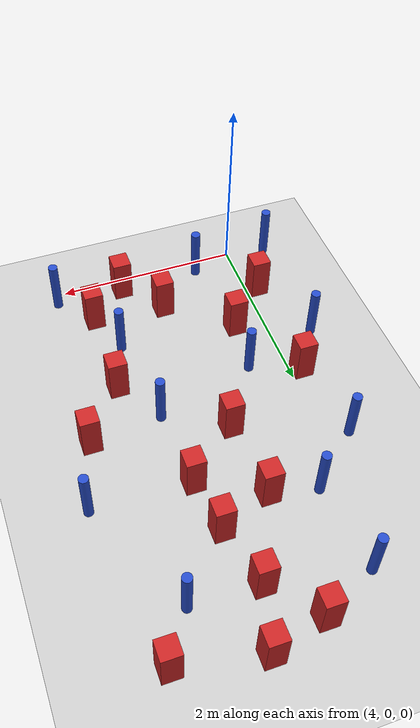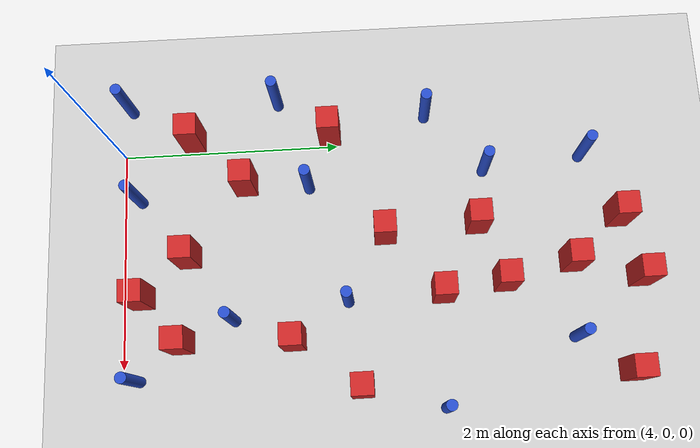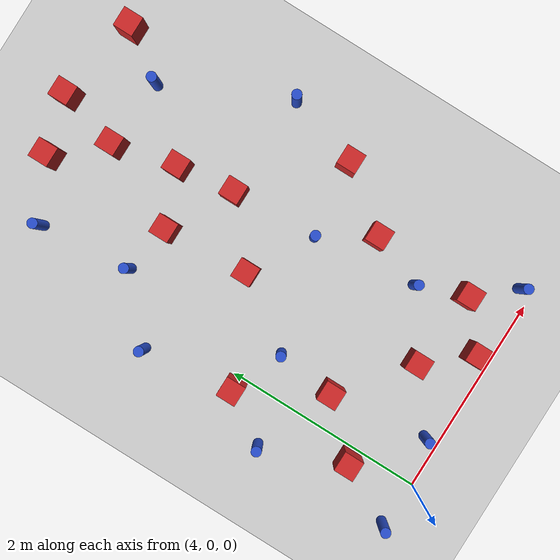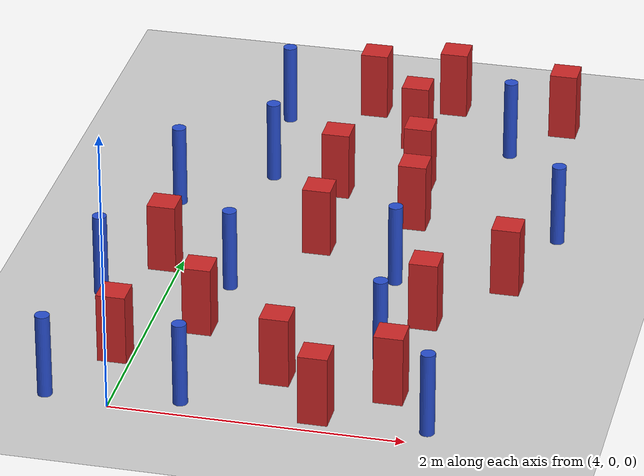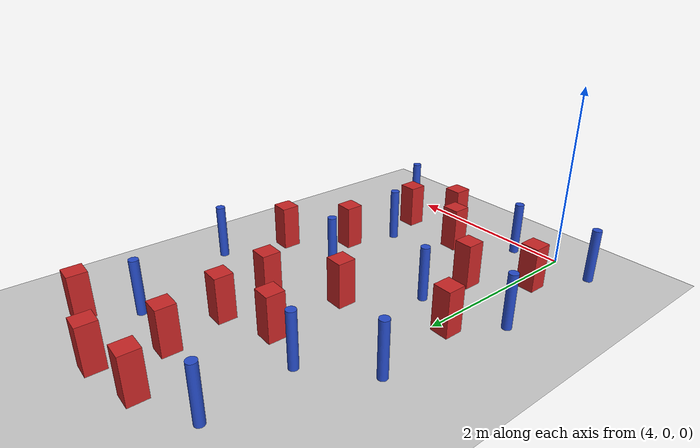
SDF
<sdf version="1.6">
 <world name="default">
  <model name="ground_plane">
   <static>1</static>
   <link name="link">
    <collision name="collision">
     <geometry><plane><normal>0 0 1</normal><size>100 100</size></plane></geometry>
     <surface><friction><ode><mu>100</mu><mu2>50</mu2></ode></friction></surface>
    </collision>
    <visual name="visual">
     <cast_shadows>0</cast_shadows>
     <geometry><plane><normal>0 0 1</normal><size>100 100</size></plane></geometry>
     <material>
      <ambient>1.0 1.0 1.0 1.0</ambient>
      <diffuse>0.8 0.8 0.8 1.0</diffuse>
      <specular>0.01 0.01 0.01 1.000000</specular>
     </material>
    </visual>
   </link>
  </model>
  <model name="square_post_obstacle4">
   <static>true</static>
   <pose>6.26932080476 2.13416776253 -6.11067671241e-07 -5.50515727128e-06 -8.79689657224e-07 2.37013304536e-05</pose>
   <link name="link">
    <pose>0 0 0.25 0 -0 0</pose>
    <inertial>
     <mass>100</mass>
     <inertia>
      <ixx>0.166667</ixx>
      <ixy>0</ixy>
      <ixz>0</ixz>
      <iyy>0.166667</iyy>
      <iyz>0</iyz>
      <izz>0.166667</izz>
     </inertia>
    </inertial>
    <collision name="collision"><geometry><box><size>.2 .2 .5</size></box></geometry></collision>
    <visual name="visual">
     <geometry><box><size>.2 .2 .5</size></box></geometry>
     <material>
      <script><name>Gazebo/Red</name><uri>file://media/materials/scripts/gazebo.material</uri></script>
     </material>
    </visual>
   </link>
  </model>
  <model name="square_post_obstacle12">
   <static>true</static>
   <pose>5.79151659013 0.536573536814 -6.11067671241e-07 -5.50515727128e-06 -8.79689657224e-07 2.37013304536e-05</pose>
   <link name="link">
    <pose>0 0 0.25 0 -0 0</pose>
    <inertial>
     <mass>100</mass>
     <inertia>
      <ixx>0.166667</ixx>
      <ixy>0</ixy>
      <ixz>0</ixz>
      <iyy>0.166667</iyy>
      <iyz>0</iyz>
      <izz>0.166667</izz>
     </inertia>
    </inertial>
    <collision name="collision"><geometry><box><size>.2 .2 .5</size></box></geometry></collision>
    <visual name="visual">
     <geometry><box><size>.2 .2 .5</size></box></geometry>
     <material>
      <script><name>Gazebo/Red</name><uri>file://media/materials/scripts/gazebo.material</uri></script>
     </material>
    </visual>
   </link>
  </model>
  <model name="square_post_obstacle34">
   <static>true</static>
   <pose>4.82586942838 4.55679232127 -6.11067671241e-07 -5.50515727128e-06 -8.79689657224e-07 2.37013304536e-05</pose>
   <link name="link">
    <pose>0 0 0.25 0 -0 0</pose>
    <inertial>
     <mass>100</mass>
     <inertia>
      <ixx>0.166667</ixx>
      <ixy>0</ixy>
      <ixz>0</ixz>
      <iyy>0.166667</iyy>
      <iyz>0</iyz>
      <izz>0.166667</izz>
     </inertia>
    </inertial>
    <collision name="collision"><geometry><box><size>.2 .2 .5</size></box></geometry></collision>
    <visual name="visual">
     <geometry><box><size>.2 .2 .5</size></box></geometry>
     <material>
      <script><name>Gazebo/Red</name><uri>file://media/materials/scripts/gazebo.material</uri></script>
     </material>
    </visual>
   </link>
  </model>
  <model name="square_post_obstacle45">
   <static>true</static>
   <pose>3.8844771772 1.93693836416 -6.11067671241e-07 -5.50515727128e-06 -8.79689657224e-07 2.37013304536e-05</pose>
   <link name="link">
    <pose>0 0 0.25 0 -0 0</pose>
    <inertial>
     <mass>100</mass>
     <inertia>
      <ixx>0.166667</ixx>
      <ixy>0</ixy>
      <ixz>0</ixz>
      <iyy>0.166667</iyy>
      <iyz>0</iyz>
      <izz>0.166667</izz>
     </inertia>
    </inertial>
    <collision name="collision"><geometry><box><size>.2 .2 .5</size></box></geometry></collision>
    <visual name="visual">
     <geometry><box><size>.2 .2 .5</size></box></geometry>
     <material>
      <script><name>Gazebo/Red</name><uri>file://media/materials/scripts/gazebo.material</uri></script>
     </material>
    </visual>
   </link>
  </model>
  <model name="pole_obstacle47">
   <static>true</static>
   <pose>5.92821344681 4.06574805997 -9.47619616065e-06 5.49618799737e-07 2.36310414037e-07 -1.55090534814e-07</pose>
   <link name="link">
    <pose>0 0 0.3 0 -0 0</pose>
    <inertial>
     <mass>1</mass>
     <inertia><ixx>0.145833</ixx><ixy>0</ixy><ixz>0</ixz><iyy>0.145833</iyy><iyz>0</iyz><izz>0.125</izz></inertia>
    </inertial>
    <collision name="collision">
     <geometry><cylinder><radius>0.05</radius><length>.6</length></cylinder></geometry>
    </collision>
    <visual name="visual">
     <geometry><cylinder><radius>0.05</radius><length>.6</length></cylinder></geometry>
     <material>
      <script><name>Gazebo/Blue</name><uri>file://media/materials/scripts/gazebo.material</uri></script>
     </material>
    </visual>
   </link>
  </model>
  <model name="pole_obstacle73">
   <static>true</static>
   <pose>3.55693027283 0.0680180246044 -9.4761961606e-06 5.49618799729e-07 2.36310414001e-07 -1.55090534824e-07</pose>
   <link name="link">
    <pose>0 0 0.3 0 -0 0</pose>
    <inertial>
     <mass>1</mass>
     <inertia><ixx>0.145833</ixx><ixy>0</ixy><ixz>0</ixz><iyy>0.145833</iyy><iyz>0</iyz><izz>0.125</izz></inertia>
    </inertial>
    <collision name="collision">
     <geometry><cylinder><radius>0.05</radius><length>.6</length></cylinder></geometry>
    </collision>
    <visual name="visual">
     <geometry><cylinder><radius>0.05</radius><length>.6</length></cylinder></geometry>
     <material>
      <script><name>Gazebo/Blue</name><uri>file://media/materials/scripts/gazebo.material</uri></script>
     </material>
    </visual>
   </link>
  </model>
  <model name="pole_obstacle74">
   <static>true</static>
   <pose>4.32387903605 3.35529345492 -9.47619616065e-06 5.49618799738e-07 2.36310414051e-07 -1.55090534805e-07</pose>
   <link name="link">
    <pose>0 0 0.3 0 -0 0</pose>
    <inertial>
     <mass>1</mass>
     <inertia><ixx>0.145833</ixx><ixy>0</ixy><ixz>0</ixz><iyy>0.145833</iyy><iyz>0</iyz><izz>0.125</izz></inertia>
    </inertial>
    <collision name="collision">
     <geometry><cylinder><radius>0.05</radius><length>.6</length></cylinder></geometry>
    </collision>
    <visual name="visual">
     <geometry><cylinder><radius>0.05</radius><length>.6</length></cylinder></geometry>
     <material>
      <script><name>Gazebo/Blue</name><uri>file://media/materials/scripts/gazebo.material</uri></script>
     </material>
    </visual>
   </link>
  </model>
  <model name="pole_obstacle75">
   <static>true</static>
   <pose>6.1163671026 0.14622011786 -9.47619616065e-06 5.49618799737e-07 2.36310414076e-07 -1.55090534793e-07</pose>
   <link name="link">
    <pose>0 0 0.3 0 -0 0</pose>
    <inertial>
     <mass>1</mass>
     <inertia><ixx>0.145833</ixx><ixy>0</ixy><ixz>0</ixz><iyy>0.145833</iyy><iyz>0</iyz><izz>0.125</izz></inertia>
    </inertial>
    <collision name="collision">
     <geometry><cylinder><radius>0.05</radius><length>.6</length></cylinder></geometry>
    </collision>
    <visual name="visual">
     <geometry><cylinder><radius>0.05</radius><length>.6</length></cylinder></geometry>
     <material>
      <script><name>Gazebo/Blue</name><uri>file://media/materials/scripts/gazebo.material</uri></script>
     </material>
    </visual>
   </link>
  </model>
  <model name="square_post_obstacle87">
   <static>true</static>
   <pose>4.87806929842 2.40512811719 -6.11067671241e-07 -5.50515727128e-06 -8.79689657224e-07 2.37013304536e-05</pose>
   <link name="link">
    <pose>0 0 0.25 0 -0 0</pose>
    <inertial>
     <mass>100</mass>
     <inertia>
      <ixx>0.166667</ixx>
      <ixy>0</ixy>
      <ixz>0</ixz>
      <iyy>0.166667</iyy>
      <iyz>0</iyz>
      <izz>0.166667</izz>
     </inertia>
    </inertial>
    <collision name="collision"><geometry><box><size>.2 .2 .5</size></box></geometry></collision>
    <visual name="visual">
     <geometry><box><size>.2 .2 .5</size></box></geometry>
     <material>
      <script><name>Gazebo/Red</name><uri>file://media/materials/scripts/gazebo.material</uri></script>
     </material>
    </visual>
   </link>
  </model>
  <model name="square_post_obstacle89">
   <static>true</static>
   <pose>4.34028850799 1.13881821213 -6.11067671241e-07 -5.50515727128e-06 -8.79689657224e-07 2.37013304536e-05</pose>
   <link name="link">
    <pose>0 0 0.25 0 -0 0</pose>
    <inertial>
     <mass>100</mass>
     <inertia>
      <ixx>0.166667</ixx>
      <ixy>0</ixy>
      <ixz>0</ixz>
      <iyy>0.166667</iyy>
      <iyz>0</iyz>
      <izz>0.166667</izz>
     </inertia>
    </inertial>
    <collision name="collision"><geometry><box><size>.2 .2 .5</size></box></geometry></collision>
    <visual name="visual">
     <geometry><box><size>.2 .2 .5</size></box></geometry>
     <material>
      <script><name>Gazebo/Red</name><uri>file://media/materials/scripts/gazebo.material</uri></script>
     </material>
    </visual>
   </link>
  </model>
  <model name="square_post_obstacle94">
   <static>true</static>
   <pose>6.24975194067 4.5316399352 -6.11067671241e-07 -5.50515727128e-06 -8.79689657224e-07 2.37013304536e-05</pose>
   <link name="link">
    <pose>0 0 0.25 0 -0 0</pose>
    <inertial>
     <mass>100</mass>
     <inertia>
      <ixx>0.166667</ixx>
      <ixy>0</ixy>
      <ixz>0</ixz>
      <iyy>0.166667</iyy>
      <iyz>0</iyz>
      <izz>0.166667</izz>
     </inertia>
    </inertial>
    <collision name="collision"><geometry><box><size>.2 .2 .5</size></box></geometry></collision>
    <visual name="visual">
     <geometry><box><size>.2 .2 .5</size></box></geometry>
     <material>
      <script><name>Gazebo/Red</name><uri>file://media/materials/scripts/gazebo.material</uri></script>
     </material>
    </visual>
   </link>
  </model>
  <model name="square_post_obstacle99">
   <static>true</static>
   <pose>5.00620187158 0.605437472301 -6.11067671241e-07 -5.50515727128e-06 -8.79689657224e-07 2.37013304536e-05</pose>
   <link name="link">
    <pose>0 0 0.25 0 -0 0</pose>
    <inertial>
     <mass>100</mass>
     <inertia>
      <ixx>0.166667</ixx>
      <ixy>0</ixy>
      <ixz>0</ixz>
      <iyy>0.166667</iyy>
      <iyz>0</iyz>
      <izz>0.166667</izz>
     </inertia>
    </inertial>
    <collision name="collision"><geometry><box><size>.2 .2 .5</size></box></geometry></collision>
    <visual name="visual">
     <geometry><box><size>.2 .2 .5</size></box></geometry>
     <material>
      <script><name>Gazebo/Red</name><uri>file://media/materials/scripts/gazebo.material</uri></script>
     </material>
    </visual>
   </link>
  </model>
  <model name="square_post_obstacle111">
   <static>true</static>
   <pose>3.87818542322 0.65652235091 -6.11067671241e-07 -5.50515727128e-06 -8.79689657224e-07 2.37013304536e-05</pose>
   <link name="link">
    <pose>0 0 0.25 0 -0 0</pose>
    <inertial>
     <mass>100</mass>
     <inertia>
      <ixx>0.166667</ixx>
      <ixy>0</ixy>
      <ixz>0</ixz>
      <iyy>0.166667</iyy>
      <iyz>0</iyz>
      <izz>0.166667</izz>
     </inertia>
    </inertial>
    <collision name="collision"><geometry><box><size>.2 .2 .5</size></box></geometry></collision>
    <visual name="visual">
     <geometry><box><size>.2 .2 .5</size></box></geometry>
     <material>
      <script><name>Gazebo/Red</name><uri>file://media/materials/scripts/gazebo.material</uri></script>
     </material>
    </visual>
   </link>
  </model>
  <model name="pole_obstacle125">
   <static>true</static>
   <pose>6.49274439916 2.86366403578 -9.47619616065e-06 5.49618799738e-07 2.36310414051e-07 -1.55090534805e-07</pose>
   <link name="link">
    <pose>0 0 0.3 0 -0 0</pose>
    <inertial>
     <mass>1</mass>
     <inertia><ixx>0.145833</ixx><ixy>0</ixy><ixz>0</ixz><iyy>0.145833</iyy><iyz>0</iyz><izz>0.125</izz></inertia>
    </inertial>
    <collision name="collision">
     <geometry><cylinder><radius>0.05</radius><length>.6</length></cylinder></geometry>
    </collision>
    <visual name="visual">
     <geometry><cylinder><radius>0.05</radius><length>.6</length></cylinder></geometry>
     <material>
      <script><name>Gazebo/Blue</name><uri>file://media/materials/scripts/gazebo.material</uri></script>
     </material>
    </visual>
   </link>
  </model>
  <model name="square_post_obstacle140">
   <static>true</static>
   <pose>5.23060293527 4.0967780694 -6.11067671241e-07 -5.50515727128e-06 -8.79689657224e-07 2.37013304536e-05</pose>
   <link name="link">
    <pose>0 0 0.25 0 -0 0</pose>
    <inertial>
     <mass>100</mass>
     <inertia>
      <ixx>0.166667</ixx>
      <ixy>0</ixy>
      <ixz>0</ixz>
      <iyy>0.166667</iyy>
      <iyz>0</iyz>
      <izz>0.166667</izz>
     </inertia>
    </inertial>
    <collision name="collision"><geometry><box><size>.2 .2 .5</size></box></geometry></collision>
    <visual name="visual">
     <geometry><box><size>.2 .2 .5</size></box></geometry>
     <material>
      <script><name>Gazebo/Red</name><uri>file://media/materials/scripts/gazebo.material</uri></script>
     </material>
    </visual>
   </link>
  </model>
  <model name="pole_obstacle151">
   <static>true</static>
   <pose>5.50062088972 2.04033107825 -9.47619616065e-06 5.49618799737e-07 2.36310414065e-07 -1.55090534797e-07</pose>
   <link name="link">
    <pose>0 0 0.3 0 -0 0</pose>
    <inertial>
     <mass>1</mass>
     <inertia><ixx>0.145833</ixx><ixy>0</ixy><ixz>0</ixz><iyy>0.145833</iyy><iyz>0</iyz><izz>0.125</izz></inertia>
    </inertial>
    <collision name="collision">
     <geometry><cylinder><radius>0.05</radius><length>.6</length></cylinder></geometry>
    </collision>
    <visual name="visual">
     <geometry><cylinder><radius>0.05</radius><length>.6</length></cylinder></geometry>
     <material>
      <script><name>Gazebo/Blue</name><uri>file://media/materials/scripts/gazebo.material</uri></script>
     </material>
    </visual>
   </link>
  </model>
  <model name="square_post_obstacle141">
   <static>true</static>
   <pose>5.37863066601 3.47014729627 -6.11067671241e-07 -5.50515727128e-06 -8.79689657224e-07 2.37013304536e-05</pose>
   <link name="link">
    <pose>0 0 0.25 0 -0 0</pose>
    <inertial>
     <mass>100</mass>
     <inertia>
      <ixx>0.166667</ixx>
      <ixy>0</ixy>
      <ixz>0</ixz>
      <iyy>0.166667</iyy>
      <iyz>0</iyz>
      <izz>0.166667</izz>
     </inertia>
    </inertial>
    <collision name="collision"><geometry><box><size>.2 .2 .5</size></box></geometry></collision>
    <visual name="visual">
     <geometry><box><size>.2 .2 .5</size></box></geometry>
     <material>
      <script><name>Gazebo/Red</name><uri>file://media/materials/scripts/gazebo.material</uri></script>
     </material>
    </visual>
   </link>
  </model>
  <model name="pole_obstacle152">
   <static>true</static>
   <pose>4.40420200495 1.72216105453 -9.47619616065e-06 5.49618799738e-07 2.36310414071e-07 -1.55090534796e-07</pose>
   <link name="link">
    <pose>0 0 0.3 0 -0 0</pose>
    <inertial>
     <mass>1</mass>
     <inertia><ixx>0.145833</ixx><ixy>0</ixy><ixz>0</ixz><iyy>0.145833</iyy><iyz>0</iyz><izz>0.125</izz></inertia>
    </inertial>
    <collision name="collision">
     <geometry><cylinder><radius>0.05</radius><length>.6</length></cylinder></geometry>
    </collision>
    <visual name="visual">
     <geometry><cylinder><radius>0.05</radius><length>.6</length></cylinder></geometry>
     <material>
      <script><name>Gazebo/Blue</name><uri>file://media/materials/scripts/gazebo.material</uri></script>
     </material>
    </visual>
   </link>
  </model>
  <model name="pole_obstacle160">
   <static>true</static>
   <pose>3.75642836605 2.83887883782 -9.47619616065e-06 5.49618799737e-07 2.36310414051e-07 -1.55090534807e-07</pose>
   <link name="link">
    <pose>0 0 0.3 0 -0 0</pose>
    <inertial>
     <mass>1</mass>
     <inertia><ixx>0.145833</ixx><ixy>0</ixy><ixz>0</ixz><iyy>0.145833</iyy><iyz>0</iyz><izz>0.125</izz></inertia>
    </inertial>
    <collision name="collision">
     <geometry><cylinder><radius>0.05</radius><length>.6</length></cylinder></geometry>
    </collision>
    <visual name="visual">
     <geometry><cylinder><radius>0.05</radius><length>.6</length></cylinder></geometry>
     <material>
      <script><name>Gazebo/Blue</name><uri>file://media/materials/scripts/gazebo.material</uri></script>
     </material>
    </visual>
   </link>
  </model>
  <model name="square_post_obstacle158">
   <static>true</static>
   <pose>5.81648789738 1.54175247365 -6.11067671241e-07 -5.50515727128e-06 -8.79689657224e-07 2.37013304536e-05</pose>
   <link name="link">
    <pose>0 0 0.25 0 -0 0</pose>
    <inertial>
     <mass>100</mass>
     <inertia>
      <ixx>0.166667</ixx>
      <ixy>0</ixy>
      <ixz>0</ixz>
      <iyy>0.166667</iyy>
      <iyz>0</iyz>
      <izz>0.166667</izz>
     </inertia>
    </inertial>
    <collision name="collision"><geometry><box><size>.2 .2 .5</size></box></geometry></collision>
    <visual name="visual">
     <geometry><box><size>.2 .2 .5</size></box></geometry>
     <material>
      <script><name>Gazebo/Red</name><uri>file://media/materials/scripts/gazebo.material</uri></script>
     </material>
    </visual>
   </link>
  </model>
  <model name="square_post_obstacle168">
   <static>true</static>
   <pose>5.36661739201 0.176539237651 -6.11067671241e-07 -5.50515727128e-06 -8.79689657224e-07 2.37013304536e-05</pose>
   <link name="link">
    <pose>0 0 0.25 0 -0 0</pose>
    <inertial>
     <mass>100</mass>
     <inertia>
      <ixx>0.166667</ixx>
      <ixy>0</ixy>
      <ixz>0</ixz>
      <iyy>0.166667</iyy>
      <iyz>0</iyz>
      <izz>0.166667</izz>
     </inertia>
    </inertial>
    <collision name="collision"><geometry><box><size>.2 .2 .5</size></box></geometry></collision>
    <visual name="visual">
     <geometry><box><size>.2 .2 .5</size></box></geometry>
     <material>
      <script><name>Gazebo/Red</name><uri>file://media/materials/scripts/gazebo.material</uri></script>
     </material>
    </visual>
   </link>
  </model>
  <model name="pole_obstacle178">
   <static>true</static>
   <pose>5.61808737924 1.00693794453 -9.47619616065e-06 5.49618799737e-07 2.36310414071e-07 -1.55090534795e-07</pose>
   <link name="link">
    <pose>0 0 0.3 0 -0 0</pose>
    <inertial>
     <mass>1</mass>
     <inertia><ixx>0.145833</ixx><ixy>0</ixy><ixz>0</ixz><iyy>0.145833</iyy><iyz>0</iyz><izz>0.125</izz></inertia>
    </inertial>
    <collision name="collision">
     <geometry><cylinder><radius>0.05</radius><length>.6</length></cylinder></geometry>
    </collision>
    <visual name="visual">
     <geometry><cylinder><radius>0.05</radius><length>.6</length></cylinder></geometry>
     <material>
      <script><name>Gazebo/Blue</name><uri>file://media/materials/scripts/gazebo.material</uri></script>
     </material>
    </visual>
   </link>
  </model>
  <model name="pole_obstacle181">
   <static>true</static>
   <pose>4.45719744567 0.157987099637 -9.47619616065e-06 5.49618799737e-07 2.36310414076e-07 -1.55090534793e-07</pose>
   <link name="link">
    <pose>0 0 0.3 0 -0 0</pose>
    <inertial>
     <mass>1</mass>
     <inertia><ixx>0.145833</ixx><ixy>0</ixy><ixz>0</ixz><iyy>0.145833</iyy><iyz>0</iyz><izz>0.125</izz></inertia>
    </inertial>
    <collision name="collision">
     <geometry><cylinder><radius>0.05</radius><length>.6</length></cylinder></geometry>
    </collision>
    <visual name="visual">
     <geometry><cylinder><radius>0.05</radius><length>.6</length></cylinder></geometry>
     <material>
      <script><name>Gazebo/Blue</name><uri>file://media/materials/scripts/gazebo.material</uri></script>
     </material>
    </visual>
   </link>
  </model>
  <model name="square_post_obstacle191">
   <static>true</static>
   <pose>5.45629660788 2.90049520107 -6.11067671241e-07 -5.50515727128e-06 -8.79689657224e-07 2.37013304536e-05</pose>
   <link name="link">
    <pose>0 0 0.25 0 -0 0</pose>
    <inertial>
     <mass>100</mass>
     <inertia>
      <ixx>0.166667</ixx>
      <ixy>0</ixy>
      <ixz>0</ixz>
      <iyy>0.166667</iyy>
      <iyz>0</iyz>
      <izz>0.166667</izz>
     </inertia>
    </inertial>
    <collision name="collision"><geometry><box><size>.2 .2 .5</size></box></geometry></collision>
    <visual name="visual">
     <geometry><box><size>.2 .2 .5</size></box></geometry>
     <material>
      <script><name>Gazebo/Red</name><uri>file://media/materials/scripts/gazebo.material</uri></script>
     </material>
    </visual>
   </link>
  </model>
  <model name="square_post_obstacle200">
   <static>true</static>
   <pose>4.82300707273 3.25462635138 -6.11067671241e-07 -5.50515727128e-06 -8.79689657224e-07 2.37013304536e-05</pose>
   <link name="link">
    <pose>0 0 0.25 0 -0 0</pose>
    <inertial>
     <mass>100</mass>
     <inertia>
      <ixx>0.166667</ixx>
      <ixy>0</ixy>
      <ixz>0</ixz>
      <iyy>0.166667</iyy>
      <iyz>0</iyz>
      <izz>0.166667</izz>
     </inertia>
    </inertial>
    <collision name="collision"><geometry><box><size>.2 .2 .5</size></box></geometry></collision>
    <visual name="visual">
     <geometry><box><size>.2 .2 .5</size></box></geometry>
     <material>
      <script><name>Gazebo/Red</name><uri>file://media/materials/scripts/gazebo.material</uri></script>
     </material>
    </visual>
   </link>
  </model>
  <model name="pole_obstacle194">
   <static>true</static>
   <pose>4.22939137211 4.27274167119 -9.47619616065e-06 5.49618799737e-07 2.36310414037e-07 -1.55090534814e-07</pose>
   <link name="link">
    <pose>0 0 0.3 0 -0 0</pose>
    <inertial>
     <mass>1</mass>
     <inertia><ixx>0.145833</ixx><ixy>0</ixy><ixz>0</ixz><iyy>0.145833</iyy><iyz>0</iyz><izz>0.125</izz></inertia>
    </inertial>
    <collision name="collision">
     <geometry><cylinder><radius>0.05</radius><length>.6</length></cylinder></geometry>
    </collision>
    <visual name="visual">
     <geometry><cylinder><radius>0.05</radius><length>.6</length></cylinder></geometry>
     <material>
      <script><name>Gazebo/Blue</name><uri>file://media/materials/scripts/gazebo.material</uri></script>
     </material>
    </visual>
   </link>
  </model>
  <model name="pole_obstacle213">
   <static>true</static>
   <pose>3.55706964697 1.45309020956 -9.47619616065e-06 5.49618799737e-07 2.36310414072e-07 -1.55090534793e-07</pose>
   <link name="link">
    <pose>0 0 0.3 0 -0 0</pose>
    <inertial>
     <mass>1</mass>
     <inertia><ixx>0.145833</ixx><ixy>0</ixy><ixz>0</ixz><iyy>0.145833</iyy><iyz>0</iyz><izz>0.125</izz></inertia>
    </inertial>
    <collision name="collision">
     <geometry><cylinder><radius>0.05</radius><length>.6</length></cylinder></geometry>
    </collision>
    <visual name="visual">
     <geometry><cylinder><radius>0.05</radius><length>.6</length></cylinder></geometry>
     <material>
      <script><name>Gazebo/Blue</name><uri>file://media/materials/scripts/gazebo.material</uri></script>
     </material>
    </visual>
   </link>
  </model>
  <model name="square_post_obstacle211">
   <static>true</static>
   <pose>5.3975699502 4.70363997688 -6.11067671241e-07 -5.50515727128e-06 -8.79689657224e-07 2.37013304536e-05</pose>
   <link name="link">
    <pose>0 0 0.25 0 -0 0</pose>
    <inertial>
     <mass>100</mass>
     <inertia>
      <ixx>0.166667</ixx>
      <ixy>0</ixy>
      <ixz>0</ixz>
      <iyy>0.166667</iyy>
      <iyz>0</iyz>
      <izz>0.166667</izz>
     </inertia>
    </inertial>
    <collision name="collision"><geometry><box><size>.2 .2 .5</size></box></geometry></collision>
    <visual name="visual">
     <geometry><box><size>.2 .2 .5</size></box></geometry>
     <material>
      <script><name>Gazebo/Red</name><uri>file://media/materials/scripts/gazebo.material</uri></script>
     </material>
    </visual>
   </link>
  </model>
 </world>
</sdf>
